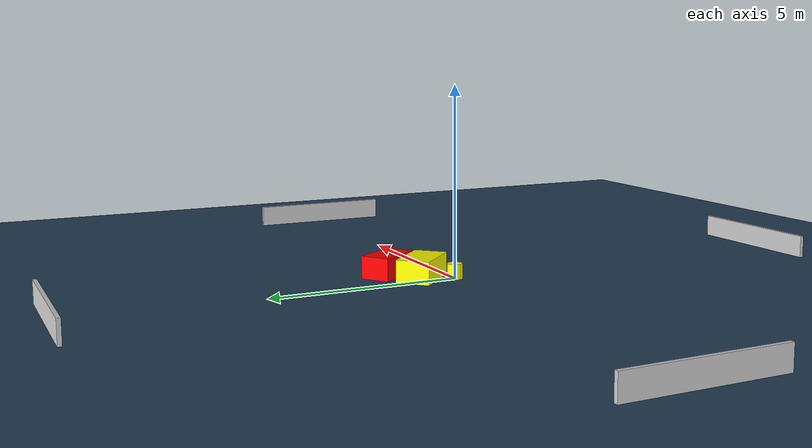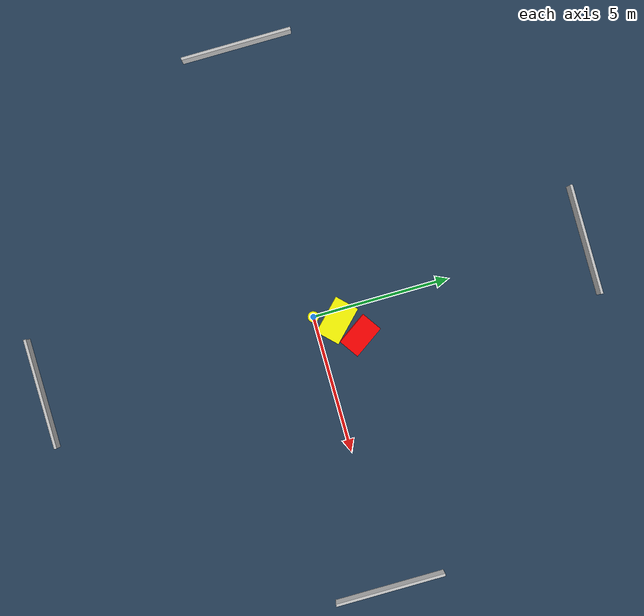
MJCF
<?xml version="1.0" ?>
<mujoco model="generated_environment">
  <option timestep="0.01" integrator="RK4" cone="elliptic"/>
  <default>
    <geom density="1"/>
  </default>
  <asset>
    <texture builtin="gradient" height="3072" name="skybox" rgb1="0.3 0.5 0.7" rgb2="0 0 0" type="skybox" width="512"/>
    <texture builtin="checker" height="300" name="groundplane" rgb1="0.2 0.3 0.4" rgb2="0.1 0.2 0.3" type="2d" width="300"/>
    <material name="groundplane" reflectance="0.2" texrepeat="5 5" texture="groundplane"/>
  </asset>
  <worldbody>
    <light dir="0 0 -1" directional="true" pos="0 0 1.5"/>
    <geom condim="3" friction="0.5 0.005 0.001" material="groundplane" name="floor" pos="0 0 0" size="0 0 0.05" type="plane"/>
    <body name="walls">
      <geom name="wall_1" condim="4" pos="-10.0 0.0 0.3" rgba="0.800000011920929 0.800000011920929 0.800000011920929 1.0" size="0.05 2.0 0.3" type="box"/>
      <geom name="wall_2" condim="4" pos="10.0 0.0 0.3" rgba="0.800000011920929 0.800000011920929 0.800000011920929 1.0" size="0.05 2.0 0.3" type="box"/>
      <geom name="wall_3" condim="4" pos="0.0 -10.0 0.3" rgba="0.800000011920929 0.800000011920929 0.800000011920929 1.0" size="2.0 0.05 0.3" type="box"/>
      <geom name="wall_4" condim="4" pos="0.0 10.0 0.3" rgba="0.800000011920929 0.800000011920929 0.800000011920929 1.0" size="2.0 0.05 0.3" type="box"/>
    </body>
    <body name="robot">
      <joint name="joint_x" type="slide" pos="0 0 0" axis="1 0 0"/>
      <joint name="joint_y" type="slide" pos="0 0 0" axis="0 1 0"/>
      <geom name="robot" type="cylinder" pos="0.0 0.0 0.2" size="0.2 0.2 0.0" mass="5.0" friction="1.0 0.005 0.0001" condim="4" rgba="1.0 1.0 0.0 1.0"/>
    </body>
    <body name="obstacle_1_movable">
      <geom name="obstacle_1_movable" condim="4" pos="0.3544964600832774 0.7737844585709021 0.3" euler="0 0 135.0900634255005" friction="0.0 0.005 0.001" rgba="1.0 1.0 0.0 1.0" size="0.7118963015178683 0.4444735958420618 0.3" type="box" mass="0.1"/>
      <joint type="free"/>
    </body>
    <body name="obstacle_2_static">
      <geom name="obstacle_2_static" condim="4" pos="1.081059241168096 1.4172183105810854 0.3" euler="0 0 214.31831345953785" friction="0.0 0.005 0.001" rgba="1.0 0.0 0.0 1.0" size="0.3979918412938859 0.6358126221459857 0.3" type="box"/>
    </body>
  </worldbody>
  <actuator>
    <motor name="actuator_x" joint="joint_x" gear="1" ctrlrange="-1 1"/>
    <motor name="actuator_y" joint="joint_y" gear="1" ctrlrange="-1 1"/>
  </actuator>
</mujoco>
